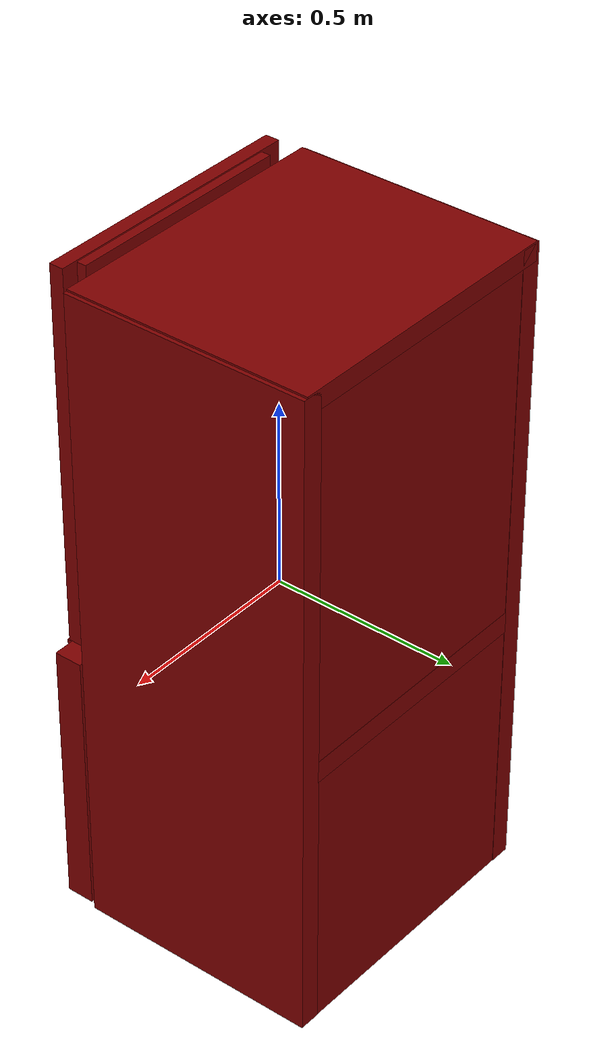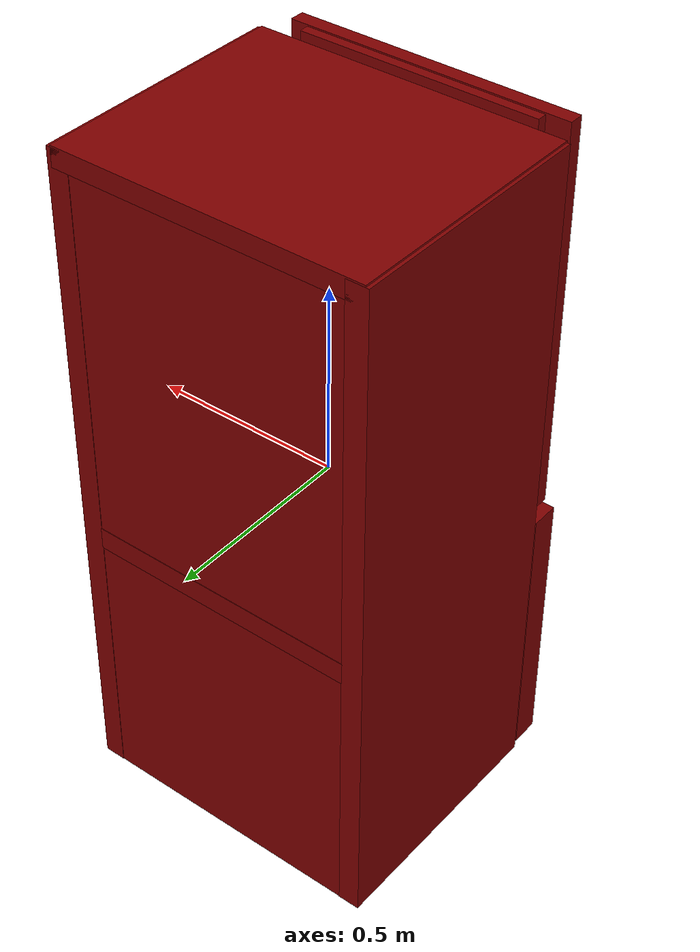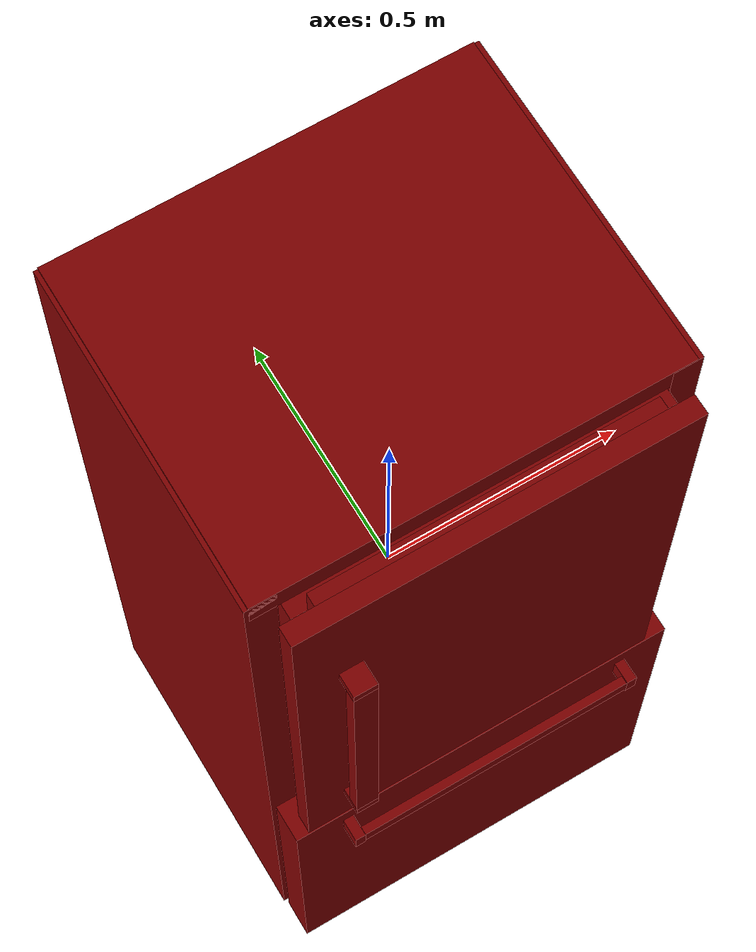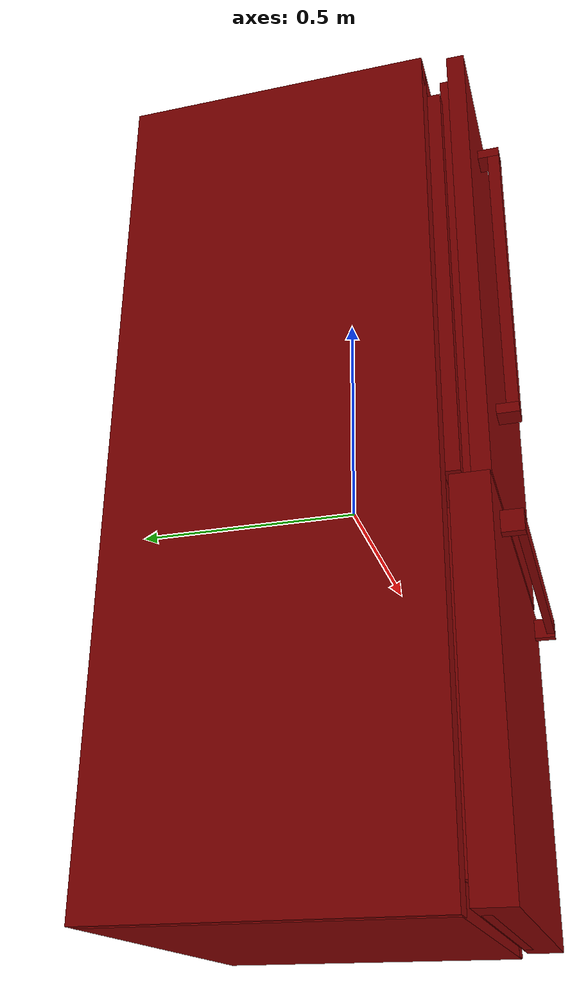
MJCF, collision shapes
<mujoco model="model">
  <compiler angle="radian"/>
  <asset>
    <mesh file="visuals/Body001.obj" name="Body001_vis"/>
    <mesh file="visuals/Body001_Clear.obj" name="Body001_Clear_vis"/>
    <mesh file="visuals/Door001.obj" name="Door001_vis"/>
    <mesh file="visuals/Door001_Clear.obj" name="Door001_Clear_vis"/>
    <mesh file="visuals/Drawer001.obj" name="Drawer001_vis"/>
    <mesh file="visuals/Drawer002.obj" name="Drawer002_vis"/>
    <texture file="visuals/T_BC001.png" name="Body001_material" type="2d"/>
    <material name="Body001_material" rgba="1 1 1 1.0" texture="Body001_material" shininess="0.4472135901451111" specular="0.3103448502657381"/>
    <texture file="visuals/T_BC001.png" name="Body001_Clear_material" type="2d"/>
    <material name="Body001_Clear_material" rgba="1 1 1 0.20000000298023224" texture="Body001_Clear_material" shininess="0.5" specular="0.3103448502657381"/>
    <texture file="visuals/T_BC001.png" name="Door001_material" type="2d"/>
    <material name="Door001_material" rgba="1 1 1 1.0" texture="Door001_material" shininess="0.4472135901451111" specular="0.3103448502657381"/>
    <texture file="visuals/T_BC001.png" name="Door001_Clear_material" type="2d"/>
    <material name="Door001_Clear_material" rgba="1 1 1 0.20000000298023224" texture="Door001_Clear_material" shininess="0.5" specular="0.3103448502657381"/>
    <texture file="visuals/T_BC001.png" name="Drawer001_material" type="2d"/>
    <material name="Drawer001_material" rgba="1 1 1 1.0" texture="Drawer001_material" shininess="0.4472135901451111" specular="0.3103448502657381"/>
    <texture file="visuals/T_BC001.png" name="Drawer002_material" type="2d"/>
    <material name="Drawer002_material" rgba="1 1 1 1.0" texture="Drawer002_material" shininess="0.4472135901451111" specular="0.3103448502657381"/>
  </asset>
  <default>
    <default class="visual">
      <geom conaffinity="0" contype="0" group="1" type="mesh"/>
    </default>
    <default class="collision">
      <geom group="0" rgba="0.5 0 0 0.5"/>
    </default>
    <default class="spawn">
      <geom group="0" rgba="1 1 1 0.5" contype="0" conaffinity="0"/>
      <site group="0" rgba="1 1 1 0.5"/>
    </default>
    <default class="region">
      <geom group="1" conaffinity="0" contype="0" rgba="0 1 0 0"/>
    </default>
  </default>
  <worldbody>
    <body>
      <body name="object">
        <geom mesh="Body001_vis" type="mesh" solimp="0.998 0.998 0.001" solref="0.001 1" density="100" friction="0.95 0.3 0.1" class="visual" material="Body001_material"/>
        <geom class="collision" type="box" pos="-0.000000 0.066057 -0.869619" size="0.3977836072444916 0.3265019655227661 0.029641538858413696" quat="1.0 0.0 0.0 0.0"/>
        <geom class="collision" type="box" pos="-0.000000 0.378908 -0.005631" size="0.3978753983974457 0.022558799013495445 0.8913357257843018" quat="1.0 0.0 0.0 0.0"/>
        <geom class="collision" type="box" pos="0.381909 0.071003 -0.005631" size="0.028150705620646477 0.33159351348876953 0.8913357257843018" quat="1.0 0.0 0.0 0.0"/>
        <geom class="collision" type="box" pos="-0.382570 0.071003 -0.005631" size="0.02854868583381176 0.33159351348876953 0.8913357257843018" quat="1.0 0.0 0.0 0.0"/>
        <geom class="collision" type="box" pos="-0.001708 0.071003 0.864396" size="0.40109333395957947 0.3315935432910919 0.02601238526403904" quat="1.0 0.0 0.0 0.0"/>
        <geom class="collision" type="box" pos="-0.000022 0.072628 -0.138328" size="0.35570257902145386 0.3299690783023834 0.029622908681631088" quat="1.0 0.0 0.0 0.0"/>
        <geom class="collision" type="box" pos="0.350612 0.132025 0.180800" size="0.004796548280864954 0.19992709159851074 0.016412153840065002" quat="1.0 0.0 0.0 0.0"/>
        <geom class="collision" type="box" pos="0.350612 0.132025 0.506456" size="0.004796535242348909 0.19992709159851074 0.016412153840065002" quat="1.0 0.0 0.0 0.0"/>
        <geom class="collision" type="box" pos="-0.353309 0.132025 0.547309" size="0.004950819071382284 0.19992709159851074 0.016412153840065002" quat="1.0 0.0 0.0 0.0"/>
        <geom class="collision" type="box" pos="-0.353309 0.132025 0.506456" size="0.0049507939256727695 0.19992709159851074 0.016412153840065002" quat="1.0 0.0 0.0 0.0"/>
        <geom class="collision" type="box" pos="-0.353309 0.132025 0.126595" size="0.004950768779963255 0.19992709159851074 0.016412153840065002" quat="1.0 0.0 0.0 0.0"/>
        <body name="Body001_Clear">
          <geom mesh="Body001_Clear_vis" type="mesh" solimp="0.998 0.998 0.001" solref="0.001 1" density="100" friction="0.95 0.3 0.1" class="visual" material="Body001_Clear_material"/>
          <geom class="collision" type="box" pos="-0.000766 0.108603 0.531237" size="0.3590417206287384 0.2529040575027466 0.007172711659222841" quat="1.0 0.0 0.0 0.0"/>
          <geom class="collision" type="box" pos="-0.000766 0.105913 0.205462" size="0.35904252529144287 0.25602906942367554 0.007259848993271589" quat="1.0 0.0 0.0 0.0"/>
        </body>
        <body name="Door001">
          <joint axis="0.0 0.0 1.0" pos="0.366231 -0.312420 0.446730" limited="true" name="Door001_joint" range="0.0 1.5707963267948966" type="hinge" damping="1" frictionloss="1" armature=".01" stiffness="0.05"/>
          <geom mesh="Door001_vis" type="mesh" solimp="0.998 0.998 0.001" solref="0.001 1" density="100" friction="0.95 0.3 0.1" class="visual" material="Door001_material"/>
          <geom class="collision" type="box" pos="-0.011388 -0.330263 0.386322" size="0.3680526614189148 0.01901877298951149 0.5154201984405518" quat="1.0 0.0 0.0 0.0"/>
          <geom class="collision" type="box" pos="-0.284260 -0.390085 0.358537" size="0.02228936366736889 0.012253968976438046 0.3276068866252899" quat="1.0 0.0 0.0 0.0"/>
          <geom class="collision" type="box" pos="-0.284261 -0.380130 0.041190" size="0.022289982065558434 0.022466136142611504 0.010743709281086922" quat="1.0 0.0 0.0 0.0"/>
          <geom class="collision" type="box" pos="-0.284260 -0.380130 0.679639" size="0.022289982065558434 0.022466136142611504 0.010743709281086922" quat="1.0 0.0 0.0 0.0"/>
          <geom class="collision" type="box" pos="-0.003243 -0.307211 0.388684" size="0.31383344531059265 0.021568071097135544 0.5091606378555298" quat="1.0 0.0 0.0 0.0"/>
          <geom class="collision" type="box" pos="0.000716 -0.260707 0.365405" size="0.34871506690979004 0.027882946655154228 0.4683062732219696" quat="1.0 0.0 0.0 0.0"/>
          <body name="Door001_Clear">
            <geom mesh="Door001_Clear_vis" type="mesh" solimp="0.998 0.998 0.001" solref="0.001 1" density="100" friction="0.95 0.3 0.1" class="visual" material="Door001_Clear_material"/>
            <geom class="collision" type="box" pos="0.011458 -0.206240 0.686773" size="0.2946494519710541 0.0351007841527462 0.0046769981272518635" quat="1.0 0.0 0.0 0.0"/>
            <geom class="collision" type="box" pos="0.004040 -0.153602 0.725909" size="0.3040439188480377 0.006379380356520414 0.040443722158670425" quat="1.0 0.0 0.0 0.0"/>
            <geom class="collision" type="box" pos="0.004040 -0.248980 0.728864" size="0.3040008544921875 0.0053335330449044704 0.04120033234357834" quat="1.0 0.0 0.0 0.0"/>
            <geom class="collision" type="box" pos="-0.299511 -0.206240 0.729881" size="0.0063467444851994514 0.04698608070611954 0.03818513825535774" quat="1.0 0.0 0.0 0.0"/>
            <geom class="collision" type="box" pos="0.302758 -0.206240 0.729881" size="0.006346755661070347 0.04698615521192551 0.03818505257368088" quat="1.0 0.0 0.0 0.0"/>
            <geom class="collision" type="box" pos="0.302758 -0.206240 0.581599" size="0.006346768233925104 0.046986229717731476 0.02446664683520794" quat="1.0 0.0 0.0 0.0"/>
            <geom class="collision" type="box" pos="-0.299511 -0.206240 0.581599" size="0.006346782203763723 0.046986304223537445 0.024466603994369507" quat="1.0 0.0 0.0 0.0"/>
            <geom class="collision" type="box" pos="0.004040 -0.248980 0.580582" size="0.3040028512477875 0.005333579145371914 0.027481673285365105" quat="1.0 0.0 0.0 0.0"/>
            <geom class="collision" type="box" pos="0.004040 -0.153804 0.577627" size="0.30403730273246765 0.006177580915391445 0.026723721995949745" quat="1.0 0.0 0.0 0.0"/>
            <geom class="collision" type="box" pos="0.011458 -0.206240 0.552208" size="0.2946481704711914 0.04698653519153595 0.004676786717027426" quat="1.0 0.0 0.0 0.0"/>
            <geom class="collision" type="box" pos="0.011458 -0.206240 0.387821" size="0.29464855790138245 0.04698660597205162 0.004676776006817818" quat="1.0 0.0 0.0 0.0"/>
            <geom class="collision" type="box" pos="0.004040 -0.152934 0.430428" size="0.3040344715118408 0.0070473914965987206 0.04391287639737129" quat="1.0 0.0 0.0 0.0"/>
            <geom class="collision" type="box" pos="0.004040 -0.248980 0.433383" size="0.30400487780570984 0.005333625245839357 0.04467024654150009" quat="1.0 0.0 0.0 0.0"/>
            <geom class="collision" type="box" pos="-0.299511 -0.206240 0.434400" size="0.006346870679408312 0.04698682203888893 0.0416550450026989" quat="1.0 0.0 0.0 0.0"/>
            <geom class="collision" type="box" pos="0.302758 -0.206240 0.434400" size="0.006346881855279207 0.0469868965446949 0.04165496304631233" quat="1.0 0.0 0.0 0.0"/>
            <geom class="collision" type="box" pos="0.302758 -0.206240 0.144180" size="0.0063468944281339645 0.04698696732521057 0.04165487736463547" quat="1.0 0.0 0.0 0.0"/>
            <geom class="collision" type="box" pos="-0.299511 -0.206240 0.144180" size="0.006346908397972584 0.04698704183101654 0.0416547916829586" quat="1.0 0.0 0.0 0.0"/>
            <geom class="collision" type="box" pos="0.004040 -0.248980 0.143163" size="0.3040069043636322 0.005333671811968088 0.044669825583696365" quat="1.0 0.0 0.0 0.0"/>
            <geom class="collision" type="box" pos="0.004040 -0.155949 0.140208" size="0.30402788519859314 0.004032044671475887 0.043911755084991455" quat="1.0 0.0 0.0 0.0"/>
            <geom class="collision" type="box" pos="0.011458 -0.206240 0.097602" size="0.29465219378471375 0.046987272799015045 0.004676681011915207" quat="1.0 0.0 0.0 0.0"/>
          </body>
        </body>
        <body name="Drawer001">
          <joint axis="0.0 -1.0 0.0" pos="-0.044884 0.094865 -0.010876" limited="true" name="Drawer001_joint" range="0.0 0.5" type="slide" damping="1" frictionloss="1" armature=".01" stiffness="0.05"/>
          <geom mesh="Drawer001_vis" type="mesh" solimp="0.998 0.998 0.001" solref="0.001 1" density="100" friction="0.95 0.3 0.1" class="visual" material="Drawer001_material"/>
          <geom class="collision" type="box" pos="-0.049114 0.094027 -0.083731" size="0.2948463261127472 0.21844692528247833 0.02210969291627407" quat="1.0 0.0 0.0 0.0"/>
          <geom class="collision" type="box" pos="-0.046965 0.097431 -0.021794" size="0.013482381589710712 0.22013041377067566 0.07260650396347046" quat="1.0 0.0 0.0 0.0"/>
          <geom class="collision" type="box" pos="-0.326802 0.097431 -0.022156" size="0.22013039886951447 0.07159365713596344 0.018035605549812317" quat="0.5145353078842163 -0.48502933979034424 0.4850291907787323 -0.5145353674888611"/>
          <geom class="collision" type="box" pos="0.236696 0.097431 -0.021427" size="0.22013039886951447 0.07244095206260681 0.012971624732017517" quat="0.4723641872406006 -0.5261863470077515 0.5261863470077515 -0.472364217042923"/>
          <geom class="collision" type="box" pos="-0.044636 0.324147 -0.021979" size="0.29997196793556213 0.01603584736585617 0.0724286213517189" quat="1.0 0.0 0.0 0.0"/>
          <geom class="collision" type="box" pos="-0.055380 -0.122933 -0.021269" size="0.286274790763855 0.07371500134468079 0.011507556773722172" quat="1.0655899984612915e-07 -6.711309730178527e-09 0.7501555681228638 -0.6612613797187805"/>
        </body>
        <body name="Drawer002">
          <joint axis="0.0 -1.0 0.0" pos="0.000335 -0.057629 -0.509021" limited="true" name="Drawer002_joint" range="0.0 0.5" type="slide" damping="1" frictionloss="1" armature=".01" stiffness="0.05"/>
          <geom mesh="Drawer002_vis" type="mesh" solimp="0.998 0.998 0.001" solref="0.001 1" density="100" friction="0.95 0.3 0.1" class="visual" material="Drawer002_material"/>
          <geom class="collision" type="box" pos="-0.296648 -0.373144 -0.198386" size="0.010743711143732071 0.022466136142611504 0.022289980202913284" quat="1.0 0.0 0.0 0.0"/>
          <geom class="collision" type="box" pos="0.304212 -0.373144 -0.198386" size="0.010743711143732071 0.022466136142611504 0.022289980202913284" quat="1.0 0.0 0.0 0.0"/>
          <geom class="collision" type="box" pos="0.003399 -0.386628 -0.194504" size="0.2889271676540375 0.008723885752260685 0.018406620249152184" quat="1.0 0.0 0.0 0.0"/>
          <geom class="collision" type="box" pos="-0.000576 -0.311226 -0.513923" size="0.4054991602897644 0.03805540129542351 0.3741016387939453" quat="1.0 0.0 0.0 0.0"/>
          <geom class="collision" type="box" pos="0.004030 -0.285208 -0.513923" size="0.31278368830680847 0.009650426916778088 0.37410208582878113" quat="1.0 0.0 0.0 0.0"/>
          <geom class="collision" type="box" pos="-0.004878 0.010829 -0.741606" size="0.3122228682041168 0.2693924307823181 0.020349932834506035" quat="1.0 0.0 0.0 0.0"/>
          <geom class="collision" type="box" pos="0.289392 0.010829 -0.514861" size="0.017952635884284973 0.2693924307823181 0.20627859234809875" quat="1.0 0.0 0.0 0.0"/>
          <geom class="collision" type="box" pos="-0.298341 0.010829 -0.514861" size="0.017952635884284973 0.2693924307823181 0.20627859234809875" quat="1.0 0.0 0.0 0.0"/>
          <geom class="collision" type="box" pos="-0.004676 0.260280 -0.514861" size="0.2765098214149475 0.01994091272354126 0.20627859234809875" quat="1.0 0.0 0.0 0.0"/>
          <geom class="collision" type="box" pos="0.000322 -0.260201 -0.507952" size="0.35030752420425415 0.012249666266143322 0.328917920589447" quat="1.0 0.0 0.0 0.0"/>
        </body>
        <geom class="region" name="reg_main" type="box" pos="-0.0005300000000000027 0.026657999999999987 0.00031449999999999534" size="0.410589 0.375939 0.9014275"/>
      </body>
    </body>
  </worldbody>
  <actuator>
    <motor name="Door001_joint_actuator" joint="Door001_joint" gear="50"/>
    <motor name="Drawer001_joint_actuator" joint="Drawer001_joint" gear="50"/>
    <motor name="Drawer002_joint_actuator" joint="Drawer002_joint" gear="50"/>
  </actuator>
</mujoco>
